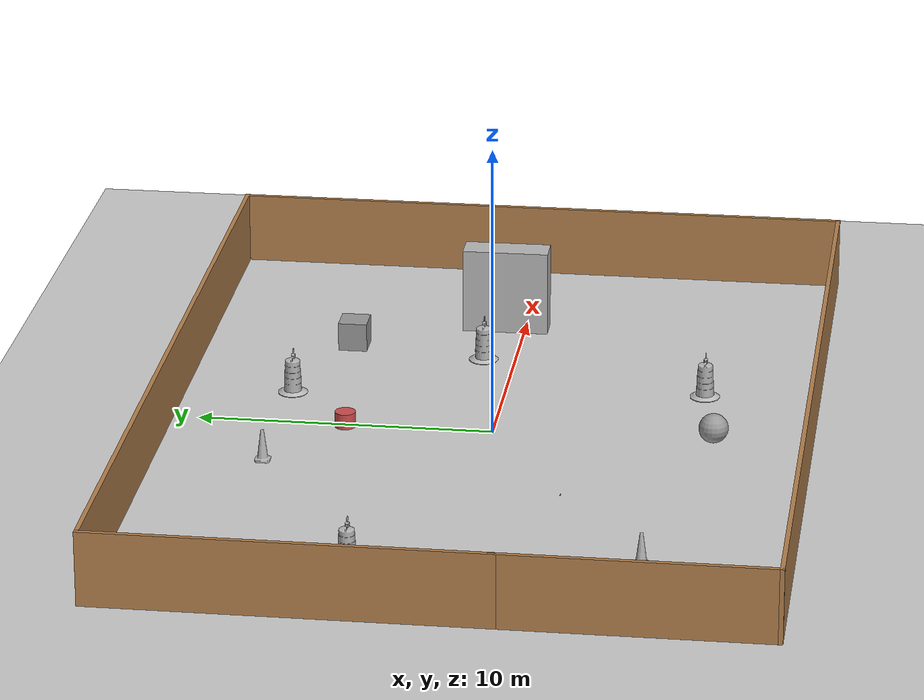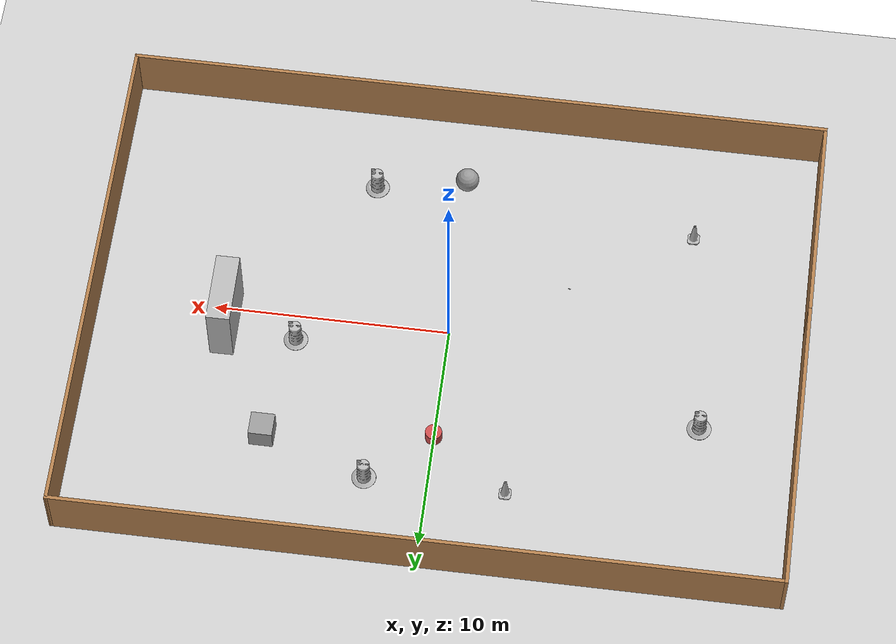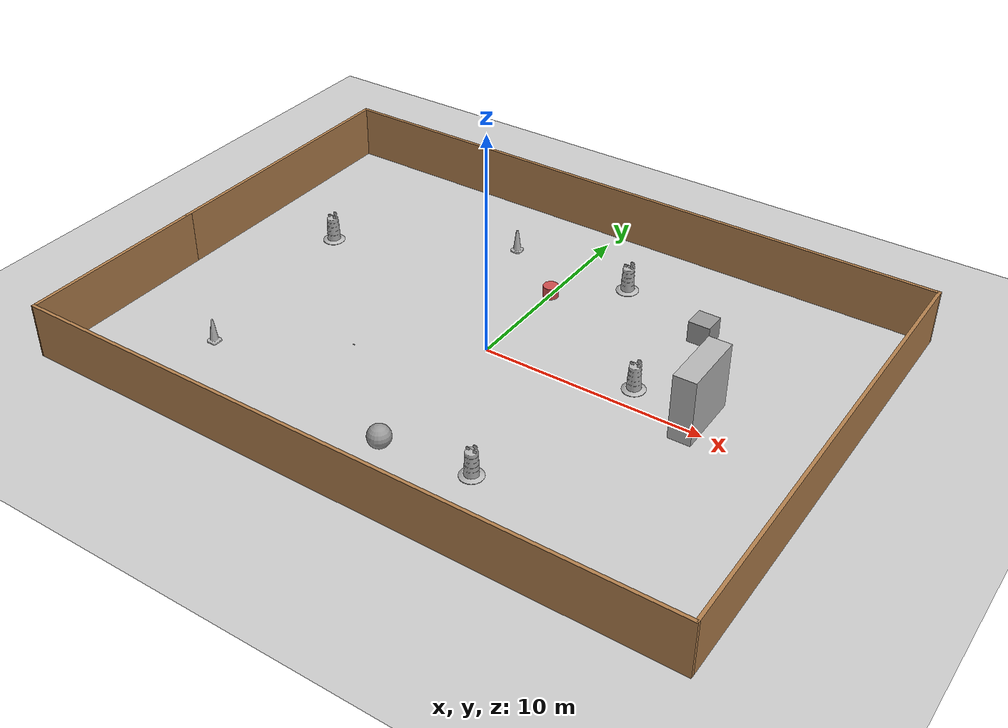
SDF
<sdf version="1.7">
 <world name="default">
  <light name="sun" type="directional">
   <pose>0 0 10 0 -0 0</pose>
   <diffuse>0.8 0.8 0.8 1</diffuse>
   <specular>0.2 0.2 0.2 1</specular>
   <attenuation>
    <range>1000</range>
    <constant>0.9</constant>
    <linear>0.01</linear>
    <quadratic>0.001</quadratic>
   </attenuation>
   <direction>-0.5 0.1 -0.9</direction>
   <spot><inner_angle>0</inner_angle><outer_angle>0</outer_angle><falloff>0</falloff></spot>
  </light>
  <model name="ground_plane">
   <static>1</static>
   <link name="link">
    <collision name="collision">
     <geometry><plane><normal>0 0 1</normal><size>100 100</size></plane></geometry>
     <surface>
      <contact><collide_bitmask>65535</collide_bitmask></contact>
      <friction><ode><mu>100</mu><mu2>50</mu2></ode></friction>
     </surface>
    </collision>
    <visual name="visual">
     <cast_shadows>0</cast_shadows>
     <geometry><plane><normal>0 0 1</normal><size>100 100</size></plane></geometry>
     <material>
      <script><uri>file://media/materials/scripts/gazebo.material</uri><name>Gazebo/Grey</name></script>
     </material>
    </visual>
   </link>
  </model>
  <gravity>0 0 -9.8</gravity>
  <magnetic_field>6e-06 2.3e-05 -4.2e-05</magnetic_field>
  <atmosphere type="adiabatic">
   <temperature>295</temperature>
   <pressure>101325</pressure>
   <humidity>0.6</humidity>
  </atmosphere>
  <physics type="ode">
   <max_step_size>0.001</max_step_size>
   <real_time_factor>1</real_time_factor>
   <real_time_update_rate>1000</real_time_update_rate>
  </physics>
  <scene><ambient>0.4 0.4 0.4 1</ambient><background>0.7 0.7 0.7 1</background><shadows>1</shadows></scene>
  <audio><device>default</device></audio>
  <wind><linear_velocity>3 3 0</linear_velocity></wind>
  <plugin name="gz::sim::systems::WindEffects" filename="gz-sim-wind-effects-system"/>
  <spherical_coordinates>
   <surface_model>EARTH_WGS84</surface_model>
   <latitude_deg>0</latitude_deg>
   <longitude_deg>0</longitude_deg>
   <elevation>0</elevation>
   <heading_deg>0</heading_deg>
  </spherical_coordinates>
  <model name="wall">
   <pose>0.030373 0.139613 0 0 -0 0</pose>
   <link name="Wall_20">
    <collision name="Wall_20_Collision">
     <geometry><box><size>9 0.15 2.5</size></box></geometry>
     <pose>0 0 1.25 0 -0 0</pose>
    </collision>
    <visual name="Wall_20_Visual">
     <pose>0 0 1.25 0 -0 0</pose>
     <geometry><box><size>9 0.15 2.5</size></box></geometry>
     <material>
      <script><uri>file://media/materials/scripts/gazebo.material</uri><name>Gazebo/Wood</name></script>
      <ambient>1 1 1 1</ambient>
     </material>
     <meta><layer>0</layer></meta>
    </visual>
    <pose>-15.0053 -6.34822 0 0 -0 -1.5708</pose>
   </link>
   <link name="Wall_21">
    <collision name="Wall_21_Collision">
     <geometry><box><size>30.1609 0.15 2.5</size></box></geometry>
     <pose>0 0 1.25 0 -0 0</pose>
    </collision>
    <visual name="Wall_21_Visual">
     <pose>0 0 1.25 0 -0 0</pose>
     <geometry><box><size>30.1609 0.15 2.5</size></box></geometry>
     <material>
      <script><uri>file://media/materials/scripts/gazebo.material</uri><name>Gazebo/Wood</name></script>
      <ambient>1 1 1 1</ambient>
     </material>
     <meta><layer>0</layer></meta>
    </visual>
    <pose>-7.3e-05 -10.8 0 0 -0 -0.001783</pose>
   </link>
   <link name="Wall_22">
    <collision name="Wall_22_Collision">
     <geometry><box><size>21.75 0.15 2.5</size></box></geometry>
     <pose>0 0 1.25 0 -0 0</pose>
    </collision>
    <visual name="Wall_22_Visual">
     <pose>0 0 1.25 0 -0 0</pose>
     <geometry><box><size>21.75 0.15 2.5</size></box></geometry>
     <material>
      <script><uri>file://media/materials/scripts/gazebo.material</uri><name>Gazebo/Wood</name></script>
      <ambient>1 1 1 1</ambient>
     </material>
     <meta><layer>0</layer></meta>
    </visual>
    <pose>15.0052 0.026781 0 0 -0 1.5708</pose>
   </link>
   <link name="Wall_23">
    <collision name="Wall_23_Collision">
     <geometry><box><size>30.1078 0.15 2.5</size></box></geometry>
     <pose>0 0 1.25 0 -0 0</pose>
    </collision>
    <visual name="Wall_23_Visual">
     <pose>0 0 1.25 0 -0 0</pose>
     <geometry><box><size>30.1078 0.15 2.5</size></box></geometry>
     <material>
      <script><uri>file://media/materials/scripts/gazebo.material</uri><name>Gazebo/Wood</name></script>
      <ambient>1 1 1 1</ambient>
     </material>
     <meta><layer>0</layer></meta>
    </visual>
    <pose>0.026678 10.8122 0 0 -0 -3.14062</pose>
   </link>
   <link name="Wall_24">
    <collision name="Wall_24_Collision">
     <geometry><box><size>13 0.15 2.5</size></box></geometry>
     <pose>0 0 1.25 0 -0 0</pose>
    </collision>
    <visual name="Wall_24_Visual">
     <pose>0 0 1.25 0 -0 0</pose>
     <geometry><box><size>13 0.15 2.5</size></box></geometry>
     <material>
      <script><uri>file://media/materials/scripts/gazebo.material</uri><name>Gazebo/Wood</name></script>
      <ambient>1 1 1 1</ambient>
     </material>
     <meta><layer>0</layer></meta>
    </visual>
    <pose>-15.0053 4.37269 0 0 -0 -1.5708</pose>
   </link>
   <static>1</static>
  </model>
  <model name="Construction Cone">
   <link name="link">
    <collision name="collision">
     <geometry>
      <mesh><scale>10 10 10</scale><uri>model://construction_cone/meshes/construction_cone.dae</uri></mesh>
     </geometry>
    </collision>
    <visual name="visual">
     <geometry>
      <mesh><scale>10 10 10</scale><uri>model://construction_cone/meshes/construction_cone.dae</uri></mesh>
     </geometry>
    </visual>
    <inertial>
     <inertia><ixx>1</ixx><ixy>0</ixy><ixz>0</ixz><iyy>1</iyy><iyz>0</iyz><izz>1</izz></inertia>
     <mass>1</mass>
    </inertial>
   </link>
   <pose>-9.85736 -5.92725 -0 1e-06 -0 -3.5e-05</pose>
  </model>
  <model name="Construction Barrel">
   <link name="link">
    <inertial>
     <pose>0 0 0.4 0 -0 0</pose>
     <mass>500</mass>
     <inertia><ixx>51.2096</ixx><iyy>51.2096</iyy><izz>25</izz><ixy>0</ixy><ixz>0</ixz><iyz>0</iyz></inertia>
    </inertial>
    <collision name="collision">
     <geometry><mesh><uri>model://construction_barrel/meshes/construction_barrel.dae</uri></mesh></geometry>
    </collision>
    <visual name="visual">
     <geometry><mesh><uri>model://construction_barrel/meshes/construction_barrel.dae</uri></mesh></geometry>
    </visual>
   </link>
   <pose>-10.9218 3.23195 -2e-06 7e-06 -2e-06 -5e-05</pose>
  </model>
  <model name="Construction Barrel_0">
   <link name="link">
    <inertial>
     <pose>0 0 0.4 0 -0 0</pose>
     <mass>500</mass>
     <inertia><ixx>51.2096</ixx><iyy>51.2096</iyy><izz>25</izz><ixy>0</ixy><ixz>0</ixz><iyz>0</iyz></inertia>
    </inertial>
    <collision name="collision">
     <geometry><mesh><uri>model://construction_barrel/meshes/construction_barrel.dae</uri></mesh></geometry>
    </collision>
    <visual name="visual">
     <geometry><mesh><uri>model://construction_barrel/meshes/construction_barrel.dae</uri></mesh></geometry>
    </visual>
   </link>
   <pose>3.96427 -6.80506 0 0 0 -4.3e-05</pose>
  </model>
  <model name="Construction Cone_0">
   <link name="link">
    <collision name="collision">
     <geometry>
      <mesh><scale>10 10 10</scale><uri>model://construction_cone/meshes/construction_cone.dae</uri></mesh>
     </geometry>
    </collision>
    <visual name="visual">
     <geometry>
      <mesh><scale>10 10 10</scale><uri>model://construction_cone/meshes/construction_cone.dae</uri></mesh>
     </geometry>
    </visual>
    <inertial>
     <inertia><ixx>1</ixx><ixy>0</ixy><ixz>0</ixz><iyy>1</iyy><iyz>0</iyz><izz>1</izz></inertia>
     <mass>1</mass>
    </inertial>
   </link>
   <pose>-3.25802 7.25171 -1e-06 4e-06 -0 0</pose>
  </model>
  <model name="Construction Barrel_1">
   <link name="link">
    <inertial>
     <pose>0 0 0.4 0 -0 0</pose>
     <mass>500</mass>
     <inertia><ixx>51.2096</ixx><iyy>51.2096</iyy><izz>25</izz><ixy>0</ixy><ixz>0</ixz><iyz>0</iyz></inertia>
    </inertial>
    <collision name="collision">
     <geometry><mesh><uri>model://construction_barrel/meshes/construction_barrel.dae</uri></mesh></geometry>
    </collision>
    <visual name="visual">
     <geometry><mesh><uri>model://construction_barrel/meshes/construction_barrel.dae</uri></mesh></geometry>
    </visual>
   </link>
   <pose>2.62207 7.22855 -2e-06 7e-06 -2e-06 -3.1e-05</pose>
  </model>
  <model name="Construction Barrel_2">
   <link name="link">
    <inertial>
     <pose>0 0 0.4 0 -0 0</pose>
     <mass>500</mass>
     <inertia><ixx>51.2096</ixx><iyy>51.2096</iyy><izz>25</izz><ixy>0</ixy><ixz>0</ixz><iyz>0</iyz></inertia>
    </inertial>
    <collision name="collision">
     <geometry><mesh><uri>model://construction_barrel/meshes/construction_barrel.dae</uri></mesh></geometry>
    </collision>
    <visual name="visual">
     <geometry><mesh><uri>model://construction_barrel/meshes/construction_barrel.dae</uri></mesh></geometry>
    </visual>
   </link>
   <pose>6.37215 1.11996 -1e-06 1e-06 -9e-06 -4.2e-05</pose>
  </model>
  <model name="brick_box_3x1x3">
   <static>1</static>
   <link name="chassis">
    <pose>0 0 1.5 0 -0 0</pose>
    <collision name="collision"><geometry><box><size>3 1 3</size></box></geometry></collision>
    <visual name="visual">
     <geometry><mesh><uri>model://brick_box_3x1x3/meshes/simple_box.dae</uri><scale>3 1 3</scale></mesh></geometry>
     <material>
      <script>
       <uri>model://brick_box_3x1x3/materials/scripts</uri>
       <uri>model://brick_box_3x1x3/materials/textures</uri>
       <name>BrickBox/Diffuse</name>
      </script>
     </material>
    </visual>
   </link>
   <pose>9.39958 0.683688 0.025669 0 0 -1.56242</pose>
  </model>
  <model name="stone_10_2_5_1cm">
   <link name="link">
    <pose>0 0 0.005 0 -0 0</pose>
    <inertial>
     <mass>0.0628</mass>
     <inertia>
      <ixx>3.79417e-06</ixx>
      <ixy>0</ixy>
      <ixz>0</ixz>
      <iyy>5.28567e-05</iyy>
      <iyz>0</iyz>
      <izz>5.56042e-05</izz>
     </inertia>
    </inertial>
    <collision name="collision">
     <geometry><box><size>0.1 0.025 0.01</size></box></geometry>
     <surface>
      <contact>
       <poissons_ratio>0.15</poissons_ratio>
       <elastic_modulus>8e+10</elastic_modulus>
       <ode><kp>100000</kp><kd>100</kd><max_vel>100</max_vel><min_depth>0.001</min_depth></ode>
      </contact>
      <friction>
       <torsional>
        <coefficient>1</coefficient>
        <use_patch_radius>0</use_patch_radius>
        <surface_radius>0.01</surface_radius>
       </torsional>
      </friction>
     </surface>
    </collision>
    <visual name="visual">
     <geometry><box><size>0.1 0.025 0.01</size></box></geometry>
     <material>
      <script><uri>file://media/materials/scripts/gazebo.material</uri><name>Gazebo/Grey</name></script>
     </material>
    </visual>
   </link>
   <pose>-4.83338 -2.81539 -0.001002 0 -0 0</pose>
  </model>
  <model name="Untitled">
   <link name="link_0">
    <inertial>
     <mass>1</mass>
     <inertia>
      <ixx>0.166667</ixx>
      <ixy>0</ixy>
      <ixz>0</ixz>
      <iyy>0.166667</iyy>
      <iyz>0</iyz>
      <izz>0.166667</izz>
     </inertia>
    </inertial>
    <pose>3.48147 6.58993 0 0 -0 0</pose>
    <visual name="visual">
     <geometry><box><size>1 1 1</size></box></geometry>
     <material>
      <lighting>1</lighting>
      <script><uri>file://media/materials/scripts/gazebo.material</uri><name>Gazebo/Grey</name></script>
      <shader type="pixel"/>
     </material>
    </visual>
    <collision name="collision">
     <geometry><box><size>1 1 1</size></box></geometry>
     <surface>
      <friction>
       <ode><mu>1</mu><mu2>1</mu2><fdir1>0 0 0</fdir1><slip1>0</slip1><slip2>0</slip2></ode>
       <torsional>
        <coefficient>1</coefficient>
        <patch_radius>0</patch_radius>
        <surface_radius>0</surface_radius>
        <use_patch_radius>1</use_patch_radius>
        <ode><slip>0</slip></ode>
       </torsional>
      </friction>
      <bounce><restitution_coefficient>0</restitution_coefficient><threshold>1e+06</threshold></bounce>
      <contact>
       <collide_without_contact>0</collide_without_contact>
       <collide_without_contact_bitmask>1</collide_without_contact_bitmask>
       <collide_bitmask>1</collide_bitmask>
       <ode>
        <soft_cfm>0</soft_cfm>
        <soft_erp>0.2</soft_erp>
        <kp>1e+13</kp>
        <kd>1</kd>
        <max_vel>0.01</max_vel>
        <min_depth>0</min_depth>
       </ode>
       <bullet>
        <split_impulse>1</split_impulse>
        <split_impulse_penetration_threshold>-0.01</split_impulse_penetration_threshold>
        <soft_cfm>0</soft_cfm>
        <soft_erp>0.2</soft_erp>
        <kp>1e+13</kp>
        <kd>1</kd>
       </bullet>
      </contact>
     </surface>
    </collision>
   </link>
   <link name="link_1">
    <inertial>
     <mass>1</mass>
     <inertia><ixx>0.1</ixx><ixy>0</ixy><ixz>0</ixz><iyy>0.1</iyy><iyz>0</iyz><izz>0.1</izz></inertia>
    </inertial>
    <pose>-3.48147 -6.58993 0 0 -0 0</pose>
    <visual name="visual">
     <geometry><sphere><radius>0.5</radius></sphere></geometry>
     <material>
      <lighting>1</lighting>
      <script><uri>file://media/materials/scripts/gazebo.material</uri><name>Gazebo/Grey</name></script>
      <shader type="pixel"/>
     </material>
    </visual>
    <collision name="collision">
     <geometry><sphere><radius>0.5</radius></sphere></geometry>
     <surface>
      <friction>
       <ode><mu>1</mu><mu2>1</mu2><fdir1>0 0 0</fdir1><slip1>0</slip1><slip2>0</slip2></ode>
       <torsional>
        <coefficient>1</coefficient>
        <patch_radius>0</patch_radius>
        <surface_radius>0</surface_radius>
        <use_patch_radius>1</use_patch_radius>
        <ode><slip>0</slip></ode>
       </torsional>
      </friction>
      <bounce><restitution_coefficient>0</restitution_coefficient><threshold>1e+06</threshold></bounce>
      <contact>
       <collide_without_contact>0</collide_without_contact>
       <collide_without_contact_bitmask>1</collide_without_contact_bitmask>
       <collide_bitmask>1</collide_bitmask>
       <ode>
        <soft_cfm>0</soft_cfm>
        <soft_erp>0.2</soft_erp>
        <kp>1e+13</kp>
        <kd>1</kd>
        <max_vel>0.01</max_vel>
        <min_depth>0</min_depth>
       </ode>
       <bullet>
        <split_impulse>1</split_impulse>
        <split_impulse_penetration_threshold>-0.01</split_impulse_penetration_threshold>
        <soft_cfm>0</soft_cfm>
        <soft_erp>0.2</soft_erp>
        <kp>1e+13</kp>
        <kd>1</kd>
       </bullet>
      </contact>
     </surface>
    </collision>
   </link>
   <static>0</static>
   <pose>3.59984 -0.812935 0.499931 1e-05 -0 0</pose>
  </model>
  <include><uri>model://VerticalMotion</uri></include>
 </world>
</sdf>

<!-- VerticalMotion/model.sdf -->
<sdf version="1.6">
  <model name="VerticalMotion">
    <static>false</static>

    <link name="link">
      <pose>0 5 0 0 0 0</pose>
      <visual name="visual">
        <geometry>
          <cylinder>
            <radius>0.35</radius>
            <length>1.0</length>
          </cylinder>
        </geometry>
        <material>
          <ambient>0.8 0.3 0.3 1</ambient>
          <diffuse>0.8 0.3 0.3 1</diffuse>
          <specular>0.5 0.5 0.5 1</specular>
        </material>
      </visual>
      <collision name="collision">
        <geometry>
          <cylinder>
            <radius>0.35</radius>
            <length>1.0</length>
          </cylinder>
        </geometry>
      </collision>
      <inertial>
        <mass>1.0</mass>
        <inertia>
          <ixx>0.1</ixx>
          <iyy>0.1</iyy>
          <izz>0.1</izz>
        </inertia>
      </inertial>
    </link>

    <!-- Attach the plugin -->
    <plugin name="VerticalMotionSystem" filename="libvertical_motion_system.so">
      <mode>bounce</mode>
      <axis>x</axis>
      <min>-2.0</min>
      <max> 2.0</max>
      <speed>0.6</speed>
    </plugin>
  </model>
</sdf>
